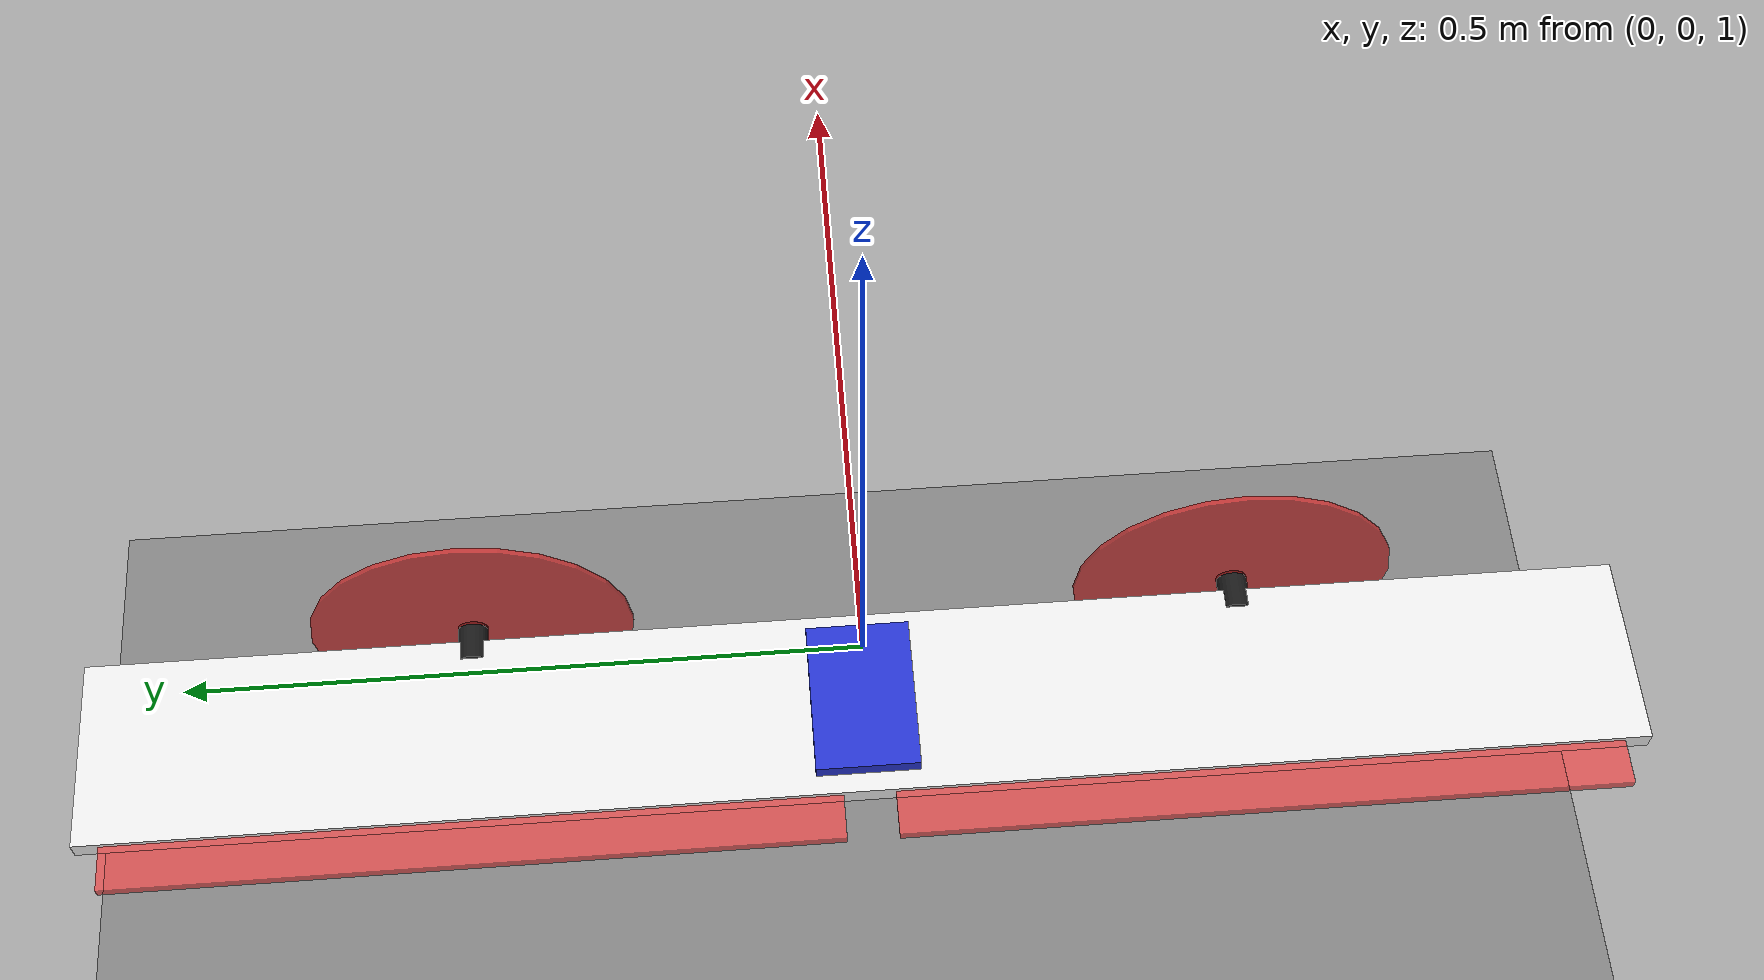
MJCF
<?xml version="1.0" ?>
<mujoco model="tailsitter">

  <compiler inertiafromgeom="auto" angle="radian"/>

  <option timestep="0.001" gravity="0 0 -9.81" integrator="Euler"/>

  <visual>
    <headlight ambient="0.4 0.4 0.4" diffuse="0.6 0.6 0.6" specular="0.1 0.1 0.1"/>
    <map shadowclip="1" shadowscale="0.6"/>
    <quality shadowsize="2048"/>
    <global offwidth="1280" offheight="720"/>
  </visual>

  <asset>
    <texture name="skybox" type="skybox" builtin="gradient"
             rgb1="0.4 0.6 0.8" rgb2="0.8 0.9 1.0" width="512" height="512"/>
    <texture name="tex_ground" type="2d" builtin="checker"
             rgb1="0.45 0.45 0.45" rgb2="0.55 0.55 0.55" width="512" height="512"/>
    <material name="mat_ground" texture="tex_ground" texrepeat="10 10"
              specular="0.1" shininess="0.1" reflectance="0.0"/>
    <material name="mat_body"   rgba="0.15 0.20 0.80 1" specular="0.5" shininess="0.7"/>
    <material name="mat_motor"  rgba="0.10 0.10 0.10 1" specular="0.3"/>
    <material name="mat_rotor"  rgba="0.85 0.15 0.15 0.75" specular="0.2"/>
    <material name="mat_wing"   rgba="0.90 0.90 0.90 0.9" specular="0.3" shininess="0.5"/>
    <material name="mat_elevon" rgba="0.9 0.3 0.3 0.8" specular="0.2"/>
  </asset>

  <worldbody>
    <!-- Ground plane — 120 m radius -->
    <geom name="ground" type="plane" size="120 120 0.1" material="mat_ground" pos="0 0 0"/>

    <!-- Main tail-sitter body -->
    <body name="body" pos="0 0 0.9">
      <freejoint name="root"/>

      <!-- Central fuselage (compact) -->
      <inertial pos="0 0 0" mass="1.2" diaginertia="0.018 0.006 0.020"/>
      <geom name="body_geom" type="box" size="0.06 0.04 0.02" material="mat_body"/>

      <!-- ========== Wing (1.2 m span, chord 0.15 m) ========== -->
      <!-- half-chord = 0.075, half-span = 0.6 -->
      <geom name="wing" type="box" size="0.075 0.6 0.008"
            pos="0 0 0.0" material="mat_wing"/>

      <!-- Elevons (visual) — one per wing half, hinged at wing trailing edge -->
      <geom name="elevon_left"  type="box" size="0.02 0.28 0.004"
            pos="-0.09 -0.3 0.0" material="mat_elevon"/>
      <geom name="elevon_right" type="box" size="0.02 0.28 0.004"
            pos="-0.09  0.3 0.0" material="mat_elevon"/>

      <!-- ---- Left motor + rotor (thrust along +X, leading edge, y=-0.3) ---- -->
      <geom name="motor_left_geom" type="cylinder" size="0.012"
            fromto="0.06 -0.3 0  0.09 -0.3 0" material="mat_motor"/>
      <body name="prop_left_body" pos="0.09 -0.3 0.0" euler="0 1.5708 0">
        <inertial pos="0 0 0" mass="0.03" diaginertia="3e-5 3e-5 3e-5"/>
        <joint name="rotor_left" type="hinge" axis="0 0 1" limited="false" damping="1e-4"/>
        <geom name="prop_left" type="cylinder" size="0.126 0.002" material="mat_rotor"/>
      </body>

      <!-- ---- Right motor + rotor (thrust along +X, leading edge, y=+0.3) ---- -->
      <geom name="motor_right_geom" type="cylinder" size="0.012"
            fromto="0.06 0.3 0  0.09 0.3 0" material="mat_motor"/>
      <body name="prop_right_body" pos="0.09 0.3 0.0" euler="0 1.5708 0">
        <inertial pos="0 0 0" mass="0.03" diaginertia="3e-5 3e-5 3e-5"/>
        <joint name="rotor_right" type="hinge" axis="0 0 1" limited="false" damping="1e-4"/>
        <geom name="prop_right" type="cylinder" size="0.126 0.002" material="mat_rotor"/>
      </body>
    </body>
  </worldbody>

  <actuator>
    <motor name="act_left"  joint="rotor_left"  gear="0.01" ctrlrange="-1 1"/>
    <motor name="act_right" joint="rotor_right" gear="0.01" ctrlrange="-1 1"/>
  </actuator>

</mujoco>
